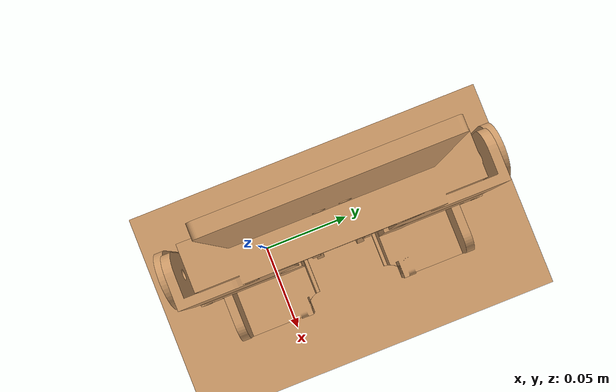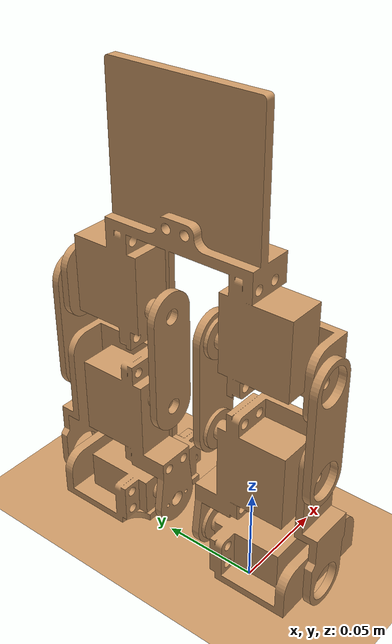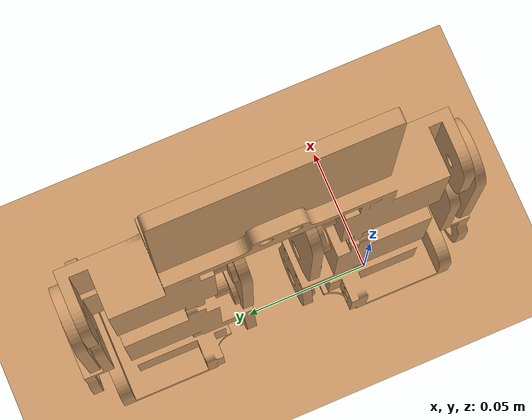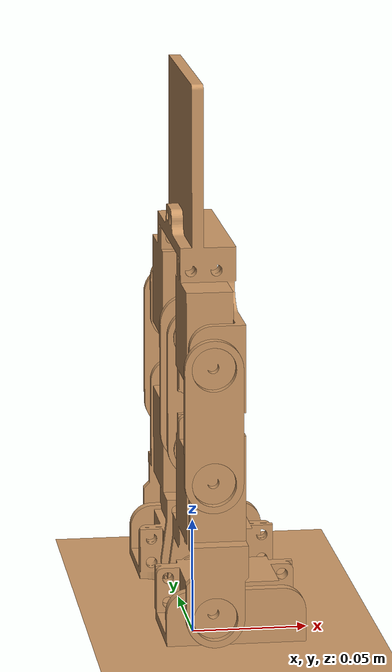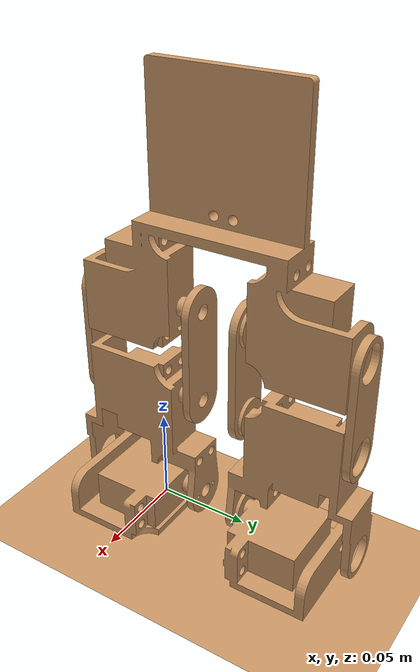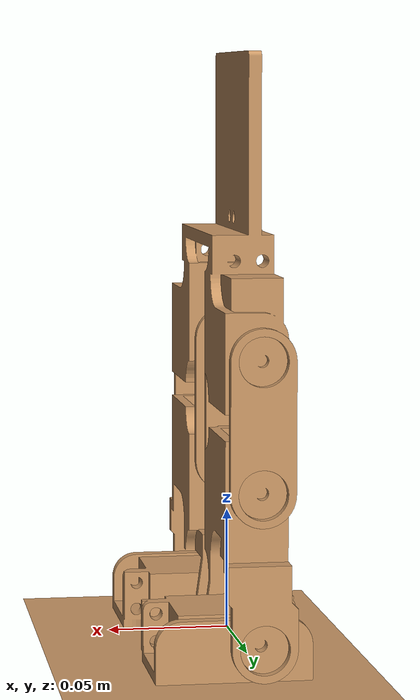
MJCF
<mujoco model="biped">
  <!-- Match DeepMind walker compiler + autolimits -->
  <compiler angle="radian" autolimits="true"/>

  <!-- Match DeepMind walker option: just specify integrator -->
  <option integrator="RK4"/>

  <!-- Defaults matching DeepMind walker2d -->
  <default class="main">
    <joint limited="true" armature="0.01" damping="0.1"/>
    <geom conaffinity="0" friction="0.7 0.1 0.1" rgba="0.8 0.6 0.4 1"/>
  </default>

  <size njmax="100" nconmax="100"/>

  <visual>
    <map znear="0.0005" zfar="10"/>
  </visual>

  <asset>
    <mesh name="hips"            file="meshes/hips.stl"            scale="0.001 0.001 0.001"/>
    <mesh name="left_leg"        file="meshes/left_leg.stl"        scale="0.001 0.001 0.001"/>
    <mesh name="right_leg"       file="meshes/right_leg.stl"       scale="0.001 0.001 0.001"/>
    <mesh name="left_connectors" file="meshes/left_connectors.stl" scale="0.001 0.001 0.001"/>
    <mesh name="right_connectors" file="meshes/right_connectors.stl" scale="0.001 0.001 0.001"/>
    <mesh name="left_foot"       file="meshes/left_foot.stl"       scale="0.001 0.001 0.001"/>
    <mesh name="right_foot"      file="meshes/right_foot.stl"      scale="0.001 0.001 0.001"/>

    <material name="mat_hips"      rgba="0.6 0.6 1.0 1"/>
    <material name="mat_leg"       rgba="0.5 0.8 1.0 1"/>
    <material name="mat_connector" rgba="1.0 0.6 0.6 1"/>
    <material name="mat_foot"      rgba="1.0 0.6 0.9 1"/>

    <texture name="tex_checker" type="2d" builtin="checker"
             width="512" height="512"
             rgb1="0.2 0.2 0.2" rgb2="0.8 0.8 0.8"
             mark="none" markrgb="0 0 0"/>
    <material name="mat_checker" texture="tex_checker" texrepeat="20 20"
              reflectance="0.2" shininess="0.1"/>
  </asset>

  <worldbody>

    <!-- Axis indicator (non-colliding) -->

    <!-- Floor: like walker, conaffinity=1 so it collides with main geoms -->
    <geom name="floor" type="plane"
          pos="0 0 0"
          size="5 5 0.1"
          material="mat_checker"
          conaffinity="1"/>

    <light name="main_light"
           pos="0 0 2"
           dir="0 0 -1"
           diffuse="1 1 1"
           specular="0.5 0.5 0.5"
           mode="trackcom"/>

    <body name="biped" pos="0 0 0.17" euler="0 0 1.5708">
      <!-- We keep a free base instead of rootx/rootz/rooty triple -->
      <joint type="free"/>

      <body name="hips" pos="0 0 0">
        <site name="base"
            pos="0.04 -0.005 -0.045"
            size="0.01"
            rgba="1 0 0 0"
            type="sphere"/>
        <geom type="mesh" mesh="hips" material="mat_hips" class="main"/>

        <!-- LEFT -->
        <body name="left_connectors">
          <joint name="left_hip_joint" type="hinge"
                 pos="-0.031 -0.005 -0.045"
                 axis="1 0 0"
                 range="-1.57 1.57"/>
          <geom type="mesh" mesh="left_connectors" material="mat_connector" class="main"/>

          <body name="left_leg">
            <joint name="left_leg_joint" type="hinge"
                   pos="-0.031 -0.005 -0.095"
                   axis="1 0 0"
                   range="-1.57 1.57"/>
            <geom type="mesh" mesh="left_leg" material="mat_leg" class="main"/>

            <body name="left_foot">
              <joint name="left_foot_joint" type="hinge"
                     pos="-0.031 -0.005 -0.153"
                     axis="1 0 0"
                     range="-0.4 0.4"/>
              <geom type="mesh" mesh="left_foot" material="mat_foot" class="main"/>
              <!-- IK / contact reference point on the left foot -->
              <site name="left_foot_ik"
                    pos="-0.031 -0.005 -0.153"
                    size="0.01"
                    rgba="1 0 0 0"
                    type="sphere"/>
            </body>
          </body>
        </body>

        <!-- RIGHT -->
        <body name="right_connectors">
          <joint name="right_hip_joint" type="hinge"
                 pos="0.111 -0.005 -0.045"
                 axis="1 0 0"
                 range="-1.57 1.57"/>
          <geom type="mesh" mesh="right_connectors" material="mat_connector" class="main"/>

          <body name="right_leg">
            <joint name="right_leg_joint" type="hinge"
                   pos="0.111 -0.005 -0.095"
                   axis="1 0 0"
                   range="-1.57 1.57"/>
            <geom type="mesh" mesh="right_leg" material="mat_leg" class="main"/>

            <body name="right_foot">
              <joint name="right_foot_joint" type="hinge"
                     pos="0.111 -0.005 -0.153"
                     axis="1 0 0"
                     range="-0.4 0.4"/>
              <geom type="mesh" mesh="right_foot" material="mat_foot" class="main"/>
              <!-- IK / contact reference point on the right foot -->
              <site name="right_foot_ik"
                    pos="0.111 -0.005 -0.153"
                    size="0.01"
                    rgba="1 0 0 0"
                    type="sphere"/>
            </body>
          </body>
        </body>

      </body>
    </body>
  </worldbody>

  <actuator>
    <!-- Torque actuators (walker-style) -->
    <general name="left_hip_act"   joint="left_hip_joint"
             ctrlrange="-1 1" gear="0.5 0 0 0 0 0" actdim="0"/>
    <general name="left_leg_act"   joint="left_leg_joint"
             ctrlrange="-1 1" gear="0.5 0 0 0 0 0" actdim="0"/>
    <general name="left_foot_act"  joint="left_foot_joint"
             ctrlrange="-1 1" gear="0.5 0 0 0 0 0" actdim="0"/>

    <general name="right_hip_act"  joint="right_hip_joint"
             ctrlrange="-1 1" gear="0.5 0 0 0 0 0" actdim="0"/>
    <general name="right_leg_act"  joint="right_leg_joint"
             ctrlrange="-1 1" gear="0.5 0 0 0 0 0" actdim="0"/>
    <general name="right_foot_act" joint="right_foot_joint"
             ctrlrange="-1 1" gear="0.5 0 0 0 0 0" actdim="0"/>
  </actuator>

  <contact>
    <exclude body1="hips" body2="left_connectors"/>
    <exclude body1="hips" body2="right_connectors"/>
  </contact>

</mujoco>
